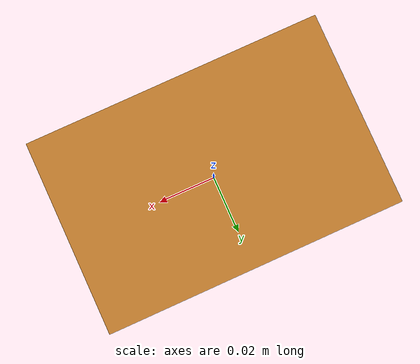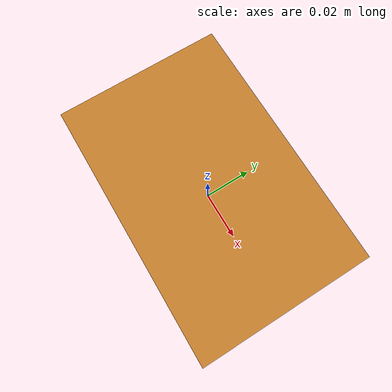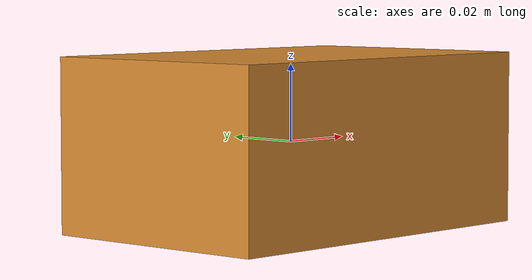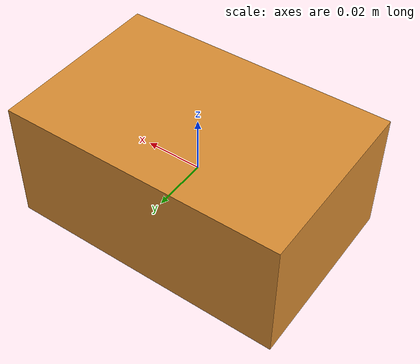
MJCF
<mujoco model="box">
  <compiler angle="radian"/>
  <default>
    <default class="visual"><geom contype="0" conaffinity="0" group="2" rgba="0.85 0.55 0.2 1"/></default>
    <default class="collision"><geom group="3" solref="0.01 1" solimp="0.9 0.95 0.001 0.5 2"/></default>
  </default>
  <worldbody>
    <!-- 10 x 6.5 x 4.5 cm box (half-extents 0.05 0.0325 0.0225). mass=0.1377 kg, solid-box inertia
         (I = m/12·(a²+b²), now consistent with the mass field). -->
    <body name="object" pos="0 0 0">
      <freejoint name="object_free"/>
      <geom type="box" size="0.05 0.0325 0.0225" class="visual"/>
      <geom type="box" size="0.05 0.0325 0.0225" class="collision"/>
      <site name="grasp" pos="0 0 0" size="0.005" rgba="0 1 0 0.5"/>
    </body>
  </worldbody>
</mujoco>
